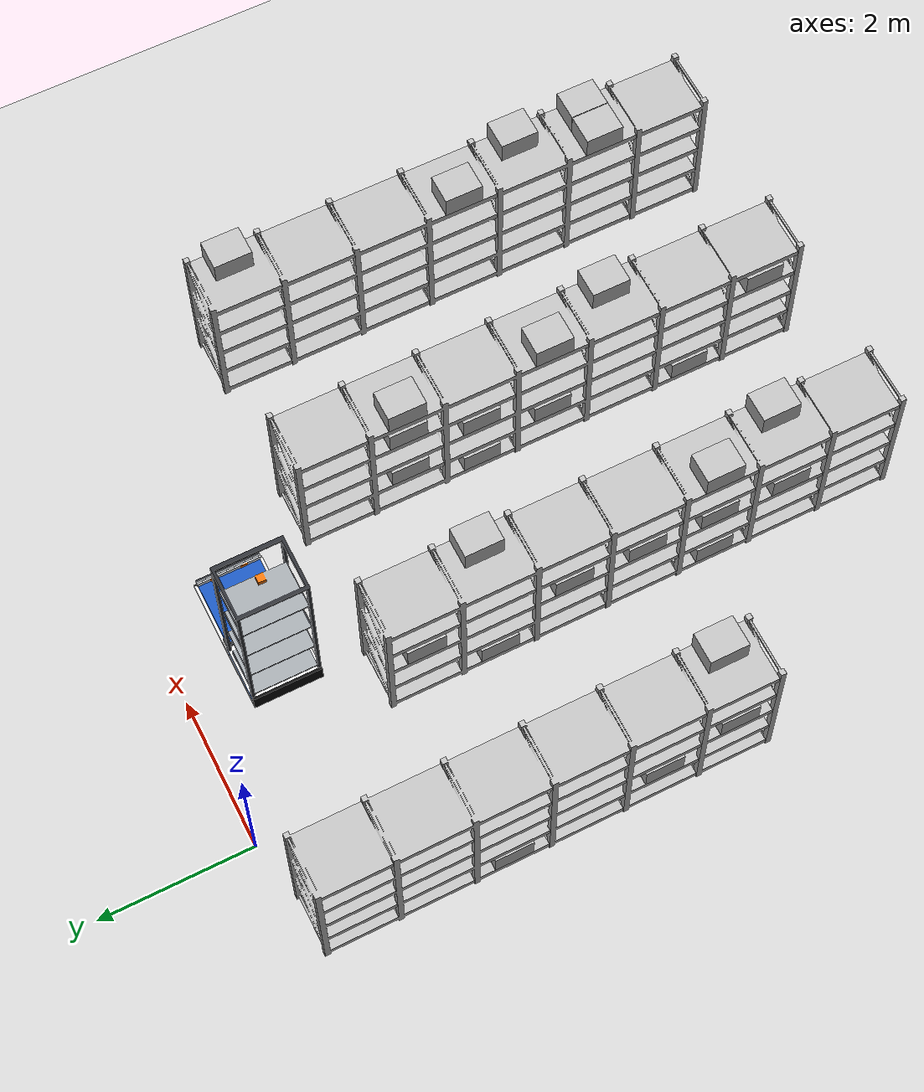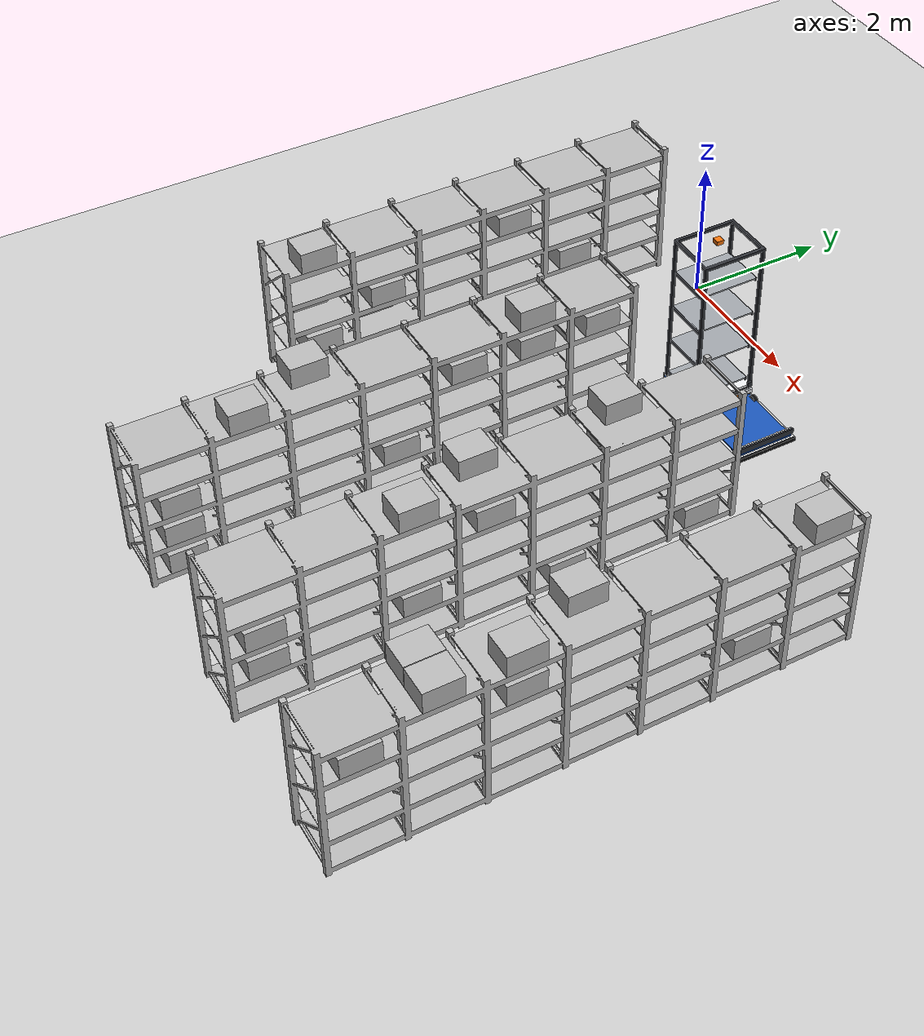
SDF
<sdf version="1.6">
 <world name="default">
  <model name="ground_plane">
   <static>1</static>
   <link name="link">
    <collision name="collision">
     <geometry><plane><normal>0 0 1</normal><size>100 100</size></plane></geometry>
     <surface><friction><ode><mu>100</mu><mu2>50</mu2></ode></friction></surface>
    </collision>
    <visual name="visual">
     <cast_shadows>0</cast_shadows>
     <geometry><plane><normal>0 0 1</normal><size>100 100</size></plane></geometry>
     <material>
      <script><uri>file://media/materials/scripts/gazebo.material</uri><name>Gazebo/Grey</name></script>
     </material>
    </visual>
   </link>
  </model>
  <include>
   <name>rack_A1_0</name>
   <uri>model://warehouse_rack_5lvl_6bay</uri>
   <pose>-1.1401 -3.0477 0 0 0 0</pose>
  </include>
  <model name="box_A_001">
   <pose>-0.93511 -5.4469 0.702 0 0 0</pose>
   <link name="link">
    <inertial>
     <mass>2.0</mass>
     <inertia><ixx>0.05667</ixx><iyy>0.04167</iyy><izz>0.06833</izz><ixy>0</ixy><ixz>0</ixz><iyz>0</iyz></inertia>
    </inertial>
    <collision name="collision">
     <geometry><box><size>0.4 0.5 0.3</size></box></geometry>
     <surface><friction><ode><mu>1.0</mu><mu2>1.0</mu2></ode></friction></surface>
    </collision>
    <visual name="visual">
     <cast_shadows>0</cast_shadows>
     <geometry><box><size>0.4 0.5 0.3</size></box></geometry>
     <material>
      <script>
       <uri>model://labeled_boxes/materials/scripts</uri>
       <uri>model://labeled_boxes/materials/textures</uri>
       <name>LabeledBox/A-001</name>
      </script>
     </material>
    </visual>
   </link>
  </model>
  <model name="box_A_002">
   <pose>-1.3451 -5.4469 1.152 0 0 0</pose>
   <link name="link">
    <inertial>
     <mass>2.0</mass>
     <inertia><ixx>0.05667</ixx><iyy>0.04167</iyy><izz>0.06833</izz><ixy>0</ixy><ixz>0</ixz><iyz>0</iyz></inertia>
    </inertial>
    <collision name="collision">
     <geometry><box><size>0.4 0.5 0.3</size></box></geometry>
     <surface><friction><ode><mu>1.0</mu><mu2>1.0</mu2></ode></friction></surface>
    </collision>
    <visual name="visual">
     <cast_shadows>0</cast_shadows>
     <geometry><box><size>0.4 0.5 0.3</size></box></geometry>
     <material>
      <script>
       <uri>model://labeled_boxes/materials/scripts</uri>
       <uri>model://labeled_boxes/materials/textures</uri>
       <name>LabeledBox/A-002</name>
      </script>
     </material>
    </visual>
   </link>
  </model>
  <model name="box_A_003">
   <pose>-0.93511 -5.4469 2.052 0 0 0</pose>
   <link name="link">
    <inertial>
     <mass>2.0</mass>
     <inertia><ixx>0.05667</ixx><iyy>0.04167</iyy><izz>0.06833</izz><ixy>0</ixy><ixz>0</ixz><iyz>0</iyz></inertia>
    </inertial>
    <collision name="collision">
     <geometry><box><size>0.4 0.5 0.3</size></box></geometry>
     <surface><friction><ode><mu>1.0</mu><mu2>1.0</mu2></ode></friction></surface>
    </collision>
    <visual name="visual">
     <cast_shadows>0</cast_shadows>
     <geometry><box><size>0.4 0.5 0.3</size></box></geometry>
     <material>
      <script>
       <uri>model://labeled_boxes/materials/scripts</uri>
       <uri>model://labeled_boxes/materials/textures</uri>
       <name>LabeledBox/A-003</name>
      </script>
     </material>
    </visual>
   </link>
  </model>
  <model name="box_A_004">
   <pose>-1.3451 -4.4977 0.702 0 0 0</pose>
   <link name="link">
    <inertial>
     <mass>2.0</mass>
     <inertia><ixx>0.05667</ixx><iyy>0.04167</iyy><izz>0.06833</izz><ixy>0</ixy><ixz>0</ixz><iyz>0</iyz></inertia>
    </inertial>
    <collision name="collision">
     <geometry><box><size>0.4 0.5 0.3</size></box></geometry>
     <surface><friction><ode><mu>1.0</mu><mu2>1.0</mu2></ode></friction></surface>
    </collision>
    <visual name="visual">
     <cast_shadows>0</cast_shadows>
     <geometry><box><size>0.4 0.5 0.3</size></box></geometry>
     <material>
      <script>
       <uri>model://labeled_boxes/materials/scripts</uri>
       <uri>model://labeled_boxes/materials/textures</uri>
       <name>LabeledBox/A-004</name>
      </script>
     </material>
    </visual>
   </link>
  </model>
  <model name="box_A_005">
   <pose>-0.93511 -4.4977 1.152 0 0 0</pose>
   <link name="link">
    <inertial>
     <mass>2.0</mass>
     <inertia><ixx>0.05667</ixx><iyy>0.04167</iyy><izz>0.06833</izz><ixy>0</ixy><ixz>0</ixz><iyz>0</iyz></inertia>
    </inertial>
    <collision name="collision">
     <geometry><box><size>0.4 0.5 0.3</size></box></geometry>
     <surface><friction><ode><mu>1.0</mu><mu2>1.0</mu2></ode></friction></surface>
    </collision>
    <visual name="visual">
     <cast_shadows>0</cast_shadows>
     <geometry><box><size>0.4 0.5 0.3</size></box></geometry>
     <material>
      <script>
       <uri>model://labeled_boxes/materials/scripts</uri>
       <uri>model://labeled_boxes/materials/textures</uri>
       <name>LabeledBox/A-005</name>
      </script>
     </material>
    </visual>
   </link>
  </model>
  <model name="box_A_006">
   <pose>-0.93511 -3.531 0.252 0 0 0</pose>
   <link name="link">
    <inertial>
     <mass>2.0</mass>
     <inertia><ixx>0.05667</ixx><iyy>0.04167</iyy><izz>0.06833</izz><ixy>0</ixy><ixz>0</ixz><iyz>0</iyz></inertia>
    </inertial>
    <collision name="collision">
     <geometry><box><size>0.4 0.5 0.3</size></box></geometry>
     <surface><friction><ode><mu>1.0</mu><mu2>1.0</mu2></ode></friction></surface>
    </collision>
    <visual name="visual">
     <cast_shadows>0</cast_shadows>
     <geometry><box><size>0.4 0.5 0.3</size></box></geometry>
     <material>
      <script>
       <uri>model://labeled_boxes/materials/scripts</uri>
       <uri>model://labeled_boxes/materials/textures</uri>
       <name>LabeledBox/A-006</name>
      </script>
     </material>
    </visual>
   </link>
  </model>
  <model name="box_A_007">
   <pose>-1.3451 -2.5644 0.252 0 0 0</pose>
   <link name="link">
    <inertial>
     <mass>2.0</mass>
     <inertia><ixx>0.05667</ixx><iyy>0.04167</iyy><izz>0.06833</izz><ixy>0</ixy><ixz>0</ixz><iyz>0</iyz></inertia>
    </inertial>
    <collision name="collision">
     <geometry><box><size>0.4 0.5 0.3</size></box></geometry>
     <surface><friction><ode><mu>1.0</mu><mu2>1.0</mu2></ode></friction></surface>
    </collision>
    <visual name="visual">
     <cast_shadows>0</cast_shadows>
     <geometry><box><size>0.4 0.5 0.3</size></box></geometry>
     <material>
      <script>
       <uri>model://labeled_boxes/materials/scripts</uri>
       <uri>model://labeled_boxes/materials/textures</uri>
       <name>LabeledBox/A-007</name>
      </script>
     </material>
    </visual>
   </link>
  </model>
  <model name="box_A_008">
   <pose>-0.93511 -2.5644 1.602 0 0 0</pose>
   <link name="link">
    <inertial>
     <mass>2.0</mass>
     <inertia><ixx>0.05667</ixx><iyy>0.04167</iyy><izz>0.06833</izz><ixy>0</ixy><ixz>0</ixz><iyz>0</iyz></inertia>
    </inertial>
    <collision name="collision">
     <geometry><box><size>0.4 0.5 0.3</size></box></geometry>
     <surface><friction><ode><mu>1.0</mu><mu2>1.0</mu2></ode></friction></surface>
    </collision>
    <visual name="visual">
     <cast_shadows>0</cast_shadows>
     <geometry><box><size>0.4 0.5 0.3</size></box></geometry>
     <material>
      <script>
       <uri>model://labeled_boxes/materials/scripts</uri>
       <uri>model://labeled_boxes/materials/textures</uri>
       <name>LabeledBox/A-008</name>
      </script>
     </material>
    </visual>
   </link>
  </model>
  <model name="box_A_009">
   <pose>-0.93511 -1.5977 0.252 0 0 0</pose>
   <link name="link">
    <inertial>
     <mass>2.0</mass>
     <inertia><ixx>0.05667</ixx><iyy>0.04167</iyy><izz>0.06833</izz><ixy>0</ixy><ixz>0</ixz><iyz>0</iyz></inertia>
    </inertial>
    <collision name="collision">
     <geometry><box><size>0.4 0.5 0.3</size></box></geometry>
     <surface><friction><ode><mu>1.0</mu><mu2>1.0</mu2></ode></friction></surface>
    </collision>
    <visual name="visual">
     <cast_shadows>0</cast_shadows>
     <geometry><box><size>0.4 0.5 0.3</size></box></geometry>
     <material>
      <script>
       <uri>model://labeled_boxes/materials/scripts</uri>
       <uri>model://labeled_boxes/materials/textures</uri>
       <name>LabeledBox/A-009</name>
      </script>
     </material>
    </visual>
   </link>
  </model>
  <model name="box_A_010">
   <pose>-0.93511 -1.5977 0.702 0 0 0</pose>
   <link name="link">
    <inertial>
     <mass>2.0</mass>
     <inertia><ixx>0.05667</ixx><iyy>0.04167</iyy><izz>0.06833</izz><ixy>0</ixy><ixz>0</ixz><iyz>0</iyz></inertia>
    </inertial>
    <collision name="collision">
     <geometry><box><size>0.4 0.5 0.3</size></box></geometry>
     <surface><friction><ode><mu>1.0</mu><mu2>1.0</mu2></ode></friction></surface>
    </collision>
    <visual name="visual">
     <cast_shadows>0</cast_shadows>
     <geometry><box><size>0.4 0.5 0.3</size></box></geometry>
     <material>
      <script>
       <uri>model://labeled_boxes/materials/scripts</uri>
       <uri>model://labeled_boxes/materials/textures</uri>
       <name>LabeledBox/A-010</name>
      </script>
     </material>
    </visual>
   </link>
  </model>
  <include>
   <name>rack_A2_0</name>
   <uri>model://warehouse_rack_5lvl_7bay</uri>
   <pose>1.2599 -5.5477 0 0 0 0</pose>
  </include>
  <model name="box_A_013">
   <pose>1.4649 -8.4445 0.252 0 0 0</pose>
   <link name="link">
    <inertial>
     <mass>2.0</mass>
     <inertia><ixx>0.05667</ixx><iyy>0.04167</iyy><izz>0.06833</izz><ixy>0</ixy><ixz>0</ixz><iyz>0</iyz></inertia>
    </inertial>
    <collision name="collision">
     <geometry><box><size>0.4 0.5 0.3</size></box></geometry>
     <surface><friction><ode><mu>1.0</mu><mu2>1.0</mu2></ode></friction></surface>
    </collision>
    <visual name="visual">
     <cast_shadows>0</cast_shadows>
     <geometry><box><size>0.4 0.5 0.3</size></box></geometry>
     <material>
      <script>
       <uri>model://labeled_boxes/materials/scripts</uri>
       <uri>model://labeled_boxes/materials/textures</uri>
       <name>LabeledBox/A-013</name>
      </script>
     </material>
    </visual>
   </link>
  </model>
  <model name="box_A_014">
   <pose>1.4649 -8.4445 0.702 0 0 0</pose>
   <link name="link">
    <inertial>
     <mass>2.0</mass>
     <inertia><ixx>0.05667</ixx><iyy>0.04167</iyy><izz>0.06833</izz><ixy>0</ixy><ixz>0</ixz><iyz>0</iyz></inertia>
    </inertial>
    <collision name="collision">
     <geometry><box><size>0.4 0.5 0.3</size></box></geometry>
     <surface><friction><ode><mu>1.0</mu><mu2>1.0</mu2></ode></friction></surface>
    </collision>
    <visual name="visual">
     <cast_shadows>0</cast_shadows>
     <geometry><box><size>0.4 0.5 0.3</size></box></geometry>
     <material>
      <script>
       <uri>model://labeled_boxes/materials/scripts</uri>
       <uri>model://labeled_boxes/materials/textures</uri>
       <name>LabeledBox/A-014</name>
      </script>
     </material>
    </visual>
   </link>
  </model>
  <model name="box_A_015">
   <pose>1.4649 -8.4445 1.152 0 0 0</pose>
   <link name="link">
    <inertial>
     <mass>2.0</mass>
     <inertia><ixx>0.05667</ixx><iyy>0.04167</iyy><izz>0.06833</izz><ixy>0</ixy><ixz>0</ixz><iyz>0</iyz></inertia>
    </inertial>
    <collision name="collision">
     <geometry><box><size>0.4 0.5 0.3</size></box></geometry>
     <surface><friction><ode><mu>1.0</mu><mu2>1.0</mu2></ode></friction></surface>
    </collision>
    <visual name="visual">
     <cast_shadows>0</cast_shadows>
     <geometry><box><size>0.4 0.5 0.3</size></box></geometry>
     <material>
      <script>
       <uri>model://labeled_boxes/materials/scripts</uri>
       <uri>model://labeled_boxes/materials/textures</uri>
       <name>LabeledBox/A-015</name>
      </script>
     </material>
    </visual>
   </link>
  </model>
  <model name="box_A_016">
   <pose>1.0549 -7.4906 1.152 0 0 0</pose>
   <link name="link">
    <inertial>
     <mass>2.0</mass>
     <inertia><ixx>0.05667</ixx><iyy>0.04167</iyy><izz>0.06833</izz><ixy>0</ixy><ixz>0</ixz><iyz>0</iyz></inertia>
    </inertial>
    <collision name="collision">
     <geometry><box><size>0.4 0.5 0.3</size></box></geometry>
     <surface><friction><ode><mu>1.0</mu><mu2>1.0</mu2></ode></friction></surface>
    </collision>
    <visual name="visual">
     <cast_shadows>0</cast_shadows>
     <geometry><box><size>0.4 0.5 0.3</size></box></geometry>
     <material>
      <script>
       <uri>model://labeled_boxes/materials/scripts</uri>
       <uri>model://labeled_boxes/materials/textures</uri>
       <name>LabeledBox/A-016</name>
      </script>
     </material>
    </visual>
   </link>
  </model>
  <model name="box_A_017">
   <pose>1.4649 -7.4906 2.052 0 0 0</pose>
   <link name="link">
    <inertial>
     <mass>2.0</mass>
     <inertia><ixx>0.05667</ixx><iyy>0.04167</iyy><izz>0.06833</izz><ixy>0</ixy><ixz>0</ixz><iyz>0</iyz></inertia>
    </inertial>
    <collision name="collision">
     <geometry><box><size>0.4 0.5 0.3</size></box></geometry>
     <surface><friction><ode><mu>1.0</mu><mu2>1.0</mu2></ode></friction></surface>
    </collision>
    <visual name="visual">
     <cast_shadows>0</cast_shadows>
     <geometry><box><size>0.4 0.5 0.3</size></box></geometry>
     <material>
      <script>
       <uri>model://labeled_boxes/materials/scripts</uri>
       <uri>model://labeled_boxes/materials/textures</uri>
       <name>LabeledBox/A-017</name>
      </script>
     </material>
    </visual>
   </link>
  </model>
  <model name="box_A_018">
   <pose>1.0549 -6.5191 0.252 0 0 0</pose>
   <link name="link">
    <inertial>
     <mass>2.0</mass>
     <inertia><ixx>0.05667</ixx><iyy>0.04167</iyy><izz>0.06833</izz><ixy>0</ixy><ixz>0</ixz><iyz>0</iyz></inertia>
    </inertial>
    <collision name="collision">
     <geometry><box><size>0.4 0.5 0.3</size></box></geometry>
     <surface><friction><ode><mu>1.0</mu><mu2>1.0</mu2></ode></friction></surface>
    </collision>
    <visual name="visual">
     <cast_shadows>0</cast_shadows>
     <geometry><box><size>0.4 0.5 0.3</size></box></geometry>
     <material>
      <script>
       <uri>model://labeled_boxes/materials/scripts</uri>
       <uri>model://labeled_boxes/materials/textures</uri>
       <name>LabeledBox/A-018</name>
      </script>
     </material>
    </visual>
   </link>
  </model>
  <model name="box_A_019">
   <pose>1.0549 -6.5191 1.152 0 0 0</pose>
   <link name="link">
    <inertial>
     <mass>2.0</mass>
     <inertia><ixx>0.05667</ixx><iyy>0.04167</iyy><izz>0.06833</izz><ixy>0</ixy><ixz>0</ixz><iyz>0</iyz></inertia>
    </inertial>
    <collision name="collision">
     <geometry><box><size>0.4 0.5 0.3</size></box></geometry>
     <surface><friction><ode><mu>1.0</mu><mu2>1.0</mu2></ode></friction></surface>
    </collision>
    <visual name="visual">
     <cast_shadows>0</cast_shadows>
     <geometry><box><size>0.4 0.5 0.3</size></box></geometry>
     <material>
      <script>
       <uri>model://labeled_boxes/materials/scripts</uri>
       <uri>model://labeled_boxes/materials/textures</uri>
       <name>LabeledBox/A-019</name>
      </script>
     </material>
    </visual>
   </link>
  </model>
  <model name="box_A_020">
   <pose>1.0549 -6.5191 2.052 0 0 0</pose>
   <link name="link">
    <inertial>
     <mass>2.0</mass>
     <inertia><ixx>0.05667</ixx><iyy>0.04167</iyy><izz>0.06833</izz><ixy>0</ixy><ixz>0</ixz><iyz>0</iyz></inertia>
    </inertial>
    <collision name="collision">
     <geometry><box><size>0.4 0.5 0.3</size></box></geometry>
     <surface><friction><ode><mu>1.0</mu><mu2>1.0</mu2></ode></friction></surface>
    </collision>
    <visual name="visual">
     <cast_shadows>0</cast_shadows>
     <geometry><box><size>0.4 0.5 0.3</size></box></geometry>
     <material>
      <script>
       <uri>model://labeled_boxes/materials/scripts</uri>
       <uri>model://labeled_boxes/materials/textures</uri>
       <name>LabeledBox/A-020</name>
      </script>
     </material>
    </visual>
   </link>
  </model>
  <model name="box_A_021">
   <pose>1.4649 -5.5477 0.702 0 0 0</pose>
   <link name="link">
    <inertial>
     <mass>2.0</mass>
     <inertia><ixx>0.05667</ixx><iyy>0.04167</iyy><izz>0.06833</izz><ixy>0</ixy><ixz>0</ixz><iyz>0</iyz></inertia>
    </inertial>
    <collision name="collision">
     <geometry><box><size>0.4 0.5 0.3</size></box></geometry>
     <surface><friction><ode><mu>1.0</mu><mu2>1.0</mu2></ode></friction></surface>
    </collision>
    <visual name="visual">
     <cast_shadows>0</cast_shadows>
     <geometry><box><size>0.4 0.5 0.3</size></box></geometry>
     <material>
      <script>
       <uri>model://labeled_boxes/materials/scripts</uri>
       <uri>model://labeled_boxes/materials/textures</uri>
       <name>LabeledBox/A-021</name>
      </script>
     </material>
    </visual>
   </link>
  </model>
  <model name="box_A_022">
   <pose>1.0549 -5.5477 1.152 0 0 0</pose>
   <link name="link">
    <inertial>
     <mass>2.0</mass>
     <inertia><ixx>0.05667</ixx><iyy>0.04167</iyy><izz>0.06833</izz><ixy>0</ixy><ixz>0</ixz><iyz>0</iyz></inertia>
    </inertial>
    <collision name="collision">
     <geometry><box><size>0.4 0.5 0.3</size></box></geometry>
     <surface><friction><ode><mu>1.0</mu><mu2>1.0</mu2></ode></friction></surface>
    </collision>
    <visual name="visual">
     <cast_shadows>0</cast_shadows>
     <geometry><box><size>0.4 0.5 0.3</size></box></geometry>
     <material>
      <script>
       <uri>model://labeled_boxes/materials/scripts</uri>
       <uri>model://labeled_boxes/materials/textures</uri>
       <name>LabeledBox/A-022</name>
      </script>
     </material>
    </visual>
   </link>
  </model>
  <model name="box_A_023">
   <pose>1.4649 -4.5763 0.252 0 0 0</pose>
   <link name="link">
    <inertial>
     <mass>2.0</mass>
     <inertia><ixx>0.05667</ixx><iyy>0.04167</iyy><izz>0.06833</izz><ixy>0</ixy><ixz>0</ixz><iyz>0</iyz></inertia>
    </inertial>
    <collision name="collision">
     <geometry><box><size>0.4 0.5 0.3</size></box></geometry>
     <surface><friction><ode><mu>1.0</mu><mu2>1.0</mu2></ode></friction></surface>
    </collision>
    <visual name="visual">
     <cast_shadows>0</cast_shadows>
     <geometry><box><size>0.4 0.5 0.3</size></box></geometry>
     <material>
      <script>
       <uri>model://labeled_boxes/materials/scripts</uri>
       <uri>model://labeled_boxes/materials/textures</uri>
       <name>LabeledBox/A-023</name>
      </script>
     </material>
    </visual>
   </link>
  </model>
  <model name="box_A_024">
   <pose>1.0549 -4.5763 1.152 0 0 0</pose>
   <link name="link">
    <inertial>
     <mass>2.0</mass>
     <inertia><ixx>0.05667</ixx><iyy>0.04167</iyy><izz>0.06833</izz><ixy>0</ixy><ixz>0</ixz><iyz>0</iyz></inertia>
    </inertial>
    <collision name="collision">
     <geometry><box><size>0.4 0.5 0.3</size></box></geometry>
     <surface><friction><ode><mu>1.0</mu><mu2>1.0</mu2></ode></friction></surface>
    </collision>
    <visual name="visual">
     <cast_shadows>0</cast_shadows>
     <geometry><box><size>0.4 0.5 0.3</size></box></geometry>
     <material>
      <script>
       <uri>model://labeled_boxes/materials/scripts</uri>
       <uri>model://labeled_boxes/materials/textures</uri>
       <name>LabeledBox/A-024</name>
      </script>
     </material>
    </visual>
   </link>
  </model>
  <model name="box_A_025">
   <pose>1.4649 -4.5763 1.602 0 0 0</pose>
   <link name="link">
    <inertial>
     <mass>2.0</mass>
     <inertia><ixx>0.05667</ixx><iyy>0.04167</iyy><izz>0.06833</izz><ixy>0</ixy><ixz>0</ixz><iyz>0</iyz></inertia>
    </inertial>
    <collision name="collision">
     <geometry><box><size>0.4 0.5 0.3</size></box></geometry>
     <surface><friction><ode><mu>1.0</mu><mu2>1.0</mu2></ode></friction></surface>
    </collision>
    <visual name="visual">
     <cast_shadows>0</cast_shadows>
     <geometry><box><size>0.4 0.5 0.3</size></box></geometry>
     <material>
      <script>
       <uri>model://labeled_boxes/materials/scripts</uri>
       <uri>model://labeled_boxes/materials/textures</uri>
       <name>LabeledBox/A-025</name>
      </script>
     </material>
    </visual>
   </link>
  </model>
  <model name="box_A_026">
   <pose>1.0549 -3.6049 0.252 0 0 0</pose>
   <link name="link">
    <inertial>
     <mass>2.0</mass>
     <inertia><ixx>0.05667</ixx><iyy>0.04167</iyy><izz>0.06833</izz><ixy>0</ixy><ixz>0</ixz><iyz>0</iyz></inertia>
    </inertial>
    <collision name="collision">
     <geometry><box><size>0.4 0.5 0.3</size></box></geometry>
     <surface><friction><ode><mu>1.0</mu><mu2>1.0</mu2></ode></friction></surface>
    </collision>
    <visual name="visual">
     <cast_shadows>0</cast_shadows>
     <geometry><box><size>0.4 0.5 0.3</size></box></geometry>
     <material>
      <script>
       <uri>model://labeled_boxes/materials/scripts</uri>
       <uri>model://labeled_boxes/materials/textures</uri>
       <name>LabeledBox/A-026</name>
      </script>
     </material>
    </visual>
   </link>
  </model>
  <model name="box_A_027">
   <pose>1.4649 -3.6049 1.602 0 0 0</pose>
   <link name="link">
    <inertial>
     <mass>2.0</mass>
     <inertia><ixx>0.05667</ixx><iyy>0.04167</iyy><izz>0.06833</izz><ixy>0</ixy><ixz>0</ixz><iyz>0</iyz></inertia>
    </inertial>
    <collision name="collision">
     <geometry><box><size>0.4 0.5 0.3</size></box></geometry>
     <surface><friction><ode><mu>1.0</mu><mu2>1.0</mu2></ode></friction></surface>
    </collision>
    <visual name="visual">
     <cast_shadows>0</cast_shadows>
     <geometry><box><size>0.4 0.5 0.3</size></box></geometry>
     <material>
      <script>
       <uri>model://labeled_boxes/materials/scripts</uri>
       <uri>model://labeled_boxes/materials/textures</uri>
       <name>LabeledBox/A-027</name>
      </script>
     </material>
    </visual>
   </link>
  </model>
  <model name="box_A_028">
   <pose>1.4649 -3.6049 2.052 0 0 0</pose>
   <link name="link">
    <inertial>
     <mass>2.0</mass>
     <inertia><ixx>0.05667</ixx><iyy>0.04167</iyy><izz>0.06833</izz><ixy>0</ixy><ixz>0</ixz><iyz>0</iyz></inertia>
    </inertial>
    <collision name="collision">
     <geometry><box><size>0.4 0.5 0.3</size></box></geometry>
     <surface><friction><ode><mu>1.0</mu><mu2>1.0</mu2></ode></friction></surface>
    </collision>
    <visual name="visual">
     <cast_shadows>0</cast_shadows>
     <geometry><box><size>0.4 0.5 0.3</size></box></geometry>
     <material>
      <script>
       <uri>model://labeled_boxes/materials/scripts</uri>
       <uri>model://labeled_boxes/materials/textures</uri>
       <name>LabeledBox/A-028</name>
      </script>
     </material>
    </visual>
   </link>
  </model>
  <model name="box_A_029">
   <pose>1.0549 -2.6509 1.152 0 0 0</pose>
   <link name="link">
    <inertial>
     <mass>2.0</mass>
     <inertia><ixx>0.05667</ixx><iyy>0.04167</iyy><izz>0.06833</izz><ixy>0</ixy><ixz>0</ixz><iyz>0</iyz></inertia>
    </inertial>
    <collision name="collision">
     <geometry><box><size>0.4 0.5 0.3</size></box></geometry>
     <surface><friction><ode><mu>1.0</mu><mu2>1.0</mu2></ode></friction></surface>
    </collision>
    <visual name="visual">
     <cast_shadows>0</cast_shadows>
     <geometry><box><size>0.4 0.5 0.3</size></box></geometry>
     <material>
      <script>
       <uri>model://labeled_boxes/materials/scripts</uri>
       <uri>model://labeled_boxes/materials/textures</uri>
       <name>LabeledBox/A-029</name>
      </script>
     </material>
    </visual>
   </link>
  </model>
  <model name="box_A_030">
   <pose>1.4649 -2.6509 1.602 0 0 0</pose>
   <link name="link">
    <inertial>
     <mass>2.0</mass>
     <inertia><ixx>0.05667</ixx><iyy>0.04167</iyy><izz>0.06833</izz><ixy>0</ixy><ixz>0</ixz><iyz>0</iyz></inertia>
    </inertial>
    <collision name="collision">
     <geometry><box><size>0.4 0.5 0.3</size></box></geometry>
     <surface><friction><ode><mu>1.0</mu><mu2>1.0</mu2></ode></friction></surface>
    </collision>
    <visual name="visual">
     <cast_shadows>0</cast_shadows>
     <geometry><box><size>0.4 0.5 0.3</size></box></geometry>
     <material>
      <script>
       <uri>model://labeled_boxes/materials/scripts</uri>
       <uri>model://labeled_boxes/materials/textures</uri>
       <name>LabeledBox/A-030</name>
      </script>
     </material>
    </visual>
   </link>
  </model>
  <include>
   <name>rack_A3_0</name>
   <uri>model://warehouse_rack_5lvl_7bay</uri>
   <pose>3.6599 -5.5477 0 0 0 0</pose>
  </include>
  <model name="box_A_048">
   <pose>3.8649 -8.4445 0.702 0 0 0</pose>
   <link name="link">
    <inertial>
     <mass>2.0</mass>
     <inertia><ixx>0.05667</ixx><iyy>0.04167</iyy><izz>0.06833</izz><ixy>0</ixy><ixz>0</ixz><iyz>0</iyz></inertia>
    </inertial>
    <collision name="collision">
     <geometry><box><size>0.4 0.5 0.3</size></box></geometry>
     <surface><friction><ode><mu>1.0</mu><mu2>1.0</mu2></ode></friction></surface>
    </collision>
    <visual name="visual">
     <cast_shadows>0</cast_shadows>
     <geometry><box><size>0.4 0.5 0.3</size></box></geometry>
     <material>
      <script>
       <uri>model://labeled_boxes/materials/scripts</uri>
       <uri>model://labeled_boxes/materials/textures</uri>
       <name>LabeledBox/A-048</name>
      </script>
     </material>
    </visual>
   </link>
  </model>
  <model name="box_A_049">
   <pose>3.8649 -8.4445 1.152 0 0 0</pose>
   <link name="link">
    <inertial>
     <mass>2.0</mass>
     <inertia><ixx>0.05667</ixx><iyy>0.04167</iyy><izz>0.06833</izz><ixy>0</ixy><ixz>0</ixz><iyz>0</iyz></inertia>
    </inertial>
    <collision name="collision">
     <geometry><box><size>0.4 0.5 0.3</size></box></geometry>
     <surface><friction><ode><mu>1.0</mu><mu2>1.0</mu2></ode></friction></surface>
    </collision>
    <visual name="visual">
     <cast_shadows>0</cast_shadows>
     <geometry><box><size>0.4 0.5 0.3</size></box></geometry>
     <material>
      <script>
       <uri>model://labeled_boxes/materials/scripts</uri>
       <uri>model://labeled_boxes/materials/textures</uri>
       <name>LabeledBox/A-049</name>
      </script>
     </material>
    </visual>
   </link>
  </model>
  <model name="box_A_050">
   <pose>3.4549 -8.4445 1.602 0 0 0</pose>
   <link name="link">
    <inertial>
     <mass>2.0</mass>
     <inertia><ixx>0.05667</ixx><iyy>0.04167</iyy><izz>0.06833</izz><ixy>0</ixy><ixz>0</ixz><iyz>0</iyz></inertia>
    </inertial>
    <collision name="collision">
     <geometry><box><size>0.4 0.5 0.3</size></box></geometry>
     <surface><friction><ode><mu>1.0</mu><mu2>1.0</mu2></ode></friction></surface>
    </collision>
    <visual name="visual">
     <cast_shadows>0</cast_shadows>
     <geometry><box><size>0.4 0.5 0.3</size></box></geometry>
     <material>
      <script>
       <uri>model://labeled_boxes/materials/scripts</uri>
       <uri>model://labeled_boxes/materials/textures</uri>
       <name>LabeledBox/A-050</name>
      </script>
     </material>
    </visual>
   </link>
  </model>
  <model name="box_A_051">
   <pose>3.4549 -7.4906 0.252 0 0 0</pose>
   <link name="link">
    <inertial>
     <mass>2.0</mass>
     <inertia><ixx>0.05667</ixx><iyy>0.04167</iyy><izz>0.06833</izz><ixy>0</ixy><ixz>0</ixz><iyz>0</iyz></inertia>
    </inertial>
    <collision name="collision">
     <geometry><box><size>0.4 0.5 0.3</size></box></geometry>
     <surface><friction><ode><mu>1.0</mu><mu2>1.0</mu2></ode></friction></surface>
    </collision>
    <visual name="visual">
     <cast_shadows>0</cast_shadows>
     <geometry><box><size>0.4 0.5 0.3</size></box></geometry>
     <material>
      <script>
       <uri>model://labeled_boxes/materials/scripts</uri>
       <uri>model://labeled_boxes/materials/textures</uri>
       <name>LabeledBox/A-051</name>
      </script>
     </material>
    </visual>
   </link>
  </model>
  <model name="box_A_052">
   <pose>3.8649 -6.5191 0.702 0 0 0</pose>
   <link name="link">
    <inertial>
     <mass>2.0</mass>
     <inertia><ixx>0.05667</ixx><iyy>0.04167</iyy><izz>0.06833</izz><ixy>0</ixy><ixz>0</ixz><iyz>0</iyz></inertia>
    </inertial>
    <collision name="collision">
     <geometry><box><size>0.4 0.5 0.3</size></box></geometry>
     <surface><friction><ode><mu>1.0</mu><mu2>1.0</mu2></ode></friction></surface>
    </collision>
    <visual name="visual">
     <cast_shadows>0</cast_shadows>
     <geometry><box><size>0.4 0.5 0.3</size></box></geometry>
     <material>
      <script>
       <uri>model://labeled_boxes/materials/scripts</uri>
       <uri>model://labeled_boxes/materials/textures</uri>
       <name>LabeledBox/A-052</name>
      </script>
     </material>
    </visual>
   </link>
  </model>
  <model name="box_A_053">
   <pose>3.8649 -6.5191 2.052 0 0 0</pose>
   <link name="link">
    <inertial>
     <mass>2.0</mass>
     <inertia><ixx>0.05667</ixx><iyy>0.04167</iyy><izz>0.06833</izz><ixy>0</ixy><ixz>0</ixz><iyz>0</iyz></inertia>
    </inertial>
    <collision name="collision">
     <geometry><box><size>0.4 0.5 0.3</size></box></geometry>
     <surface><friction><ode><mu>1.0</mu><mu2>1.0</mu2></ode></friction></surface>
    </collision>
    <visual name="visual">
     <cast_shadows>0</cast_shadows>
     <geometry><box><size>0.4 0.5 0.3</size></box></geometry>
     <material>
      <script>
       <uri>model://labeled_boxes/materials/scripts</uri>
       <uri>model://labeled_boxes/materials/textures</uri>
       <name>LabeledBox/A-053</name>
      </script>
     </material>
    </visual>
   </link>
  </model>
  <model name="box_A_054">
   <pose>3.4549 -5.5477 0.702 0 0 0</pose>
   <link name="link">
    <inertial>
     <mass>2.0</mass>
     <inertia><ixx>0.05667</ixx><iyy>0.04167</iyy><izz>0.06833</izz><ixy>0</ixy><ixz>0</ixz><iyz>0</iyz></inertia>
    </inertial>
    <collision name="collision">
     <geometry><box><size>0.4 0.5 0.3</size></box></geometry>
     <surface><friction><ode><mu>1.0</mu><mu2>1.0</mu2></ode></friction></surface>
    </collision>
    <visual name="visual">
     <cast_shadows>0</cast_shadows>
     <geometry><box><size>0.4 0.5 0.3</size></box></geometry>
     <material>
      <script>
       <uri>model://labeled_boxes/materials/scripts</uri>
       <uri>model://labeled_boxes/materials/textures</uri>
       <name>LabeledBox/A-054</name>
      </script>
     </material>
    </visual>
   </link>
  </model>
  <model name="box_A_055">
   <pose>3.8649 -5.5477 1.602 0 0 0</pose>
   <link name="link">
    <inertial>
     <mass>2.0</mass>
     <inertia><ixx>0.05667</ixx><iyy>0.04167</iyy><izz>0.06833</izz><ixy>0</ixy><ixz>0</ixz><iyz>0</iyz></inertia>
    </inertial>
    <collision name="collision">
     <geometry><box><size>0.4 0.5 0.3</size></box></geometry>
     <surface><friction><ode><mu>1.0</mu><mu2>1.0</mu2></ode></friction></surface>
    </collision>
    <visual name="visual">
     <cast_shadows>0</cast_shadows>
     <geometry><box><size>0.4 0.5 0.3</size></box></geometry>
     <material>
      <script>
       <uri>model://labeled_boxes/materials/scripts</uri>
       <uri>model://labeled_boxes/materials/textures</uri>
       <name>LabeledBox/A-055</name>
      </script>
     </material>
    </visual>
   </link>
  </model>
  <model name="box_A_056">
   <pose>3.4549 -5.5477 2.052 0 0 0</pose>
   <link name="link">
    <inertial>
     <mass>2.0</mass>
     <inertia><ixx>0.05667</ixx><iyy>0.04167</iyy><izz>0.06833</izz><ixy>0</ixy><ixz>0</ixz><iyz>0</iyz></inertia>
    </inertial>
    <collision name="collision">
     <geometry><box><size>0.4 0.5 0.3</size></box></geometry>
     <surface><friction><ode><mu>1.0</mu><mu2>1.0</mu2></ode></friction></surface>
    </collision>
    <visual name="visual">
     <cast_shadows>0</cast_shadows>
     <geometry><box><size>0.4 0.5 0.3</size></box></geometry>
     <material>
      <script>
       <uri>model://labeled_boxes/materials/scripts</uri>
       <uri>model://labeled_boxes/materials/textures</uri>
       <name>LabeledBox/A-056</name>
      </script>
     </material>
    </visual>
   </link>
  </model>
  <model name="box_A_057">
   <pose>3.4549 -4.5763 0.252 0 0 0</pose>
   <link name="link">
    <inertial>
     <mass>2.0</mass>
     <inertia><ixx>0.05667</ixx><iyy>0.04167</iyy><izz>0.06833</izz><ixy>0</ixy><ixz>0</ixz><iyz>0</iyz></inertia>
    </inertial>
    <collision name="collision">
     <geometry><box><size>0.4 0.5 0.3</size></box></geometry>
     <surface><friction><ode><mu>1.0</mu><mu2>1.0</mu2></ode></friction></surface>
    </collision>
    <visual name="visual">
     <cast_shadows>0</cast_shadows>
     <geometry><box><size>0.4 0.5 0.3</size></box></geometry>
     <material>
      <script>
       <uri>model://labeled_boxes/materials/scripts</uri>
       <uri>model://labeled_boxes/materials/textures</uri>
       <name>LabeledBox/A-057</name>
      </script>
     </material>
    </visual>
   </link>
  </model>
  <model name="box_A_058">
   <pose>3.8649 -4.5763 0.252 0 0 0</pose>
   <link name="link">
    <inertial>
     <mass>2.0</mass>
     <inertia><ixx>0.05667</ixx><iyy>0.04167</iyy><izz>0.06833</izz><ixy>0</ixy><ixz>0</ixz><iyz>0</iyz></inertia>
    </inertial>
    <collision name="collision">
     <geometry><box><size>0.4 0.5 0.3</size></box></geometry>
     <surface><friction><ode><mu>1.0</mu><mu2>1.0</mu2></ode></friction></surface>
    </collision>
    <visual name="visual">
     <cast_shadows>0</cast_shadows>
     <geometry><box><size>0.4 0.5 0.3</size></box></geometry>
     <material>
      <script>
       <uri>model://labeled_boxes/materials/scripts</uri>
       <uri>model://labeled_boxes/materials/textures</uri>
       <name>LabeledBox/A-058</name>
      </script>
     </material>
    </visual>
   </link>
  </model>
  <model name="box_A_059">
   <pose>3.4549 -4.5763 1.152 0 0 0</pose>
   <link name="link">
    <inertial>
     <mass>2.0</mass>
     <inertia><ixx>0.05667</ixx><iyy>0.04167</iyy><izz>0.06833</izz><ixy>0</ixy><ixz>0</ixz><iyz>0</iyz></inertia>
    </inertial>
    <collision name="collision">
     <geometry><box><size>0.4 0.5 0.3</size></box></geometry>
     <surface><friction><ode><mu>1.0</mu><mu2>1.0</mu2></ode></friction></surface>
    </collision>
    <visual name="visual">
     <cast_shadows>0</cast_shadows>
     <geometry><box><size>0.4 0.5 0.3</size></box></geometry>
     <material>
      <script>
       <uri>model://labeled_boxes/materials/scripts</uri>
       <uri>model://labeled_boxes/materials/textures</uri>
       <name>LabeledBox/A-059</name>
      </script>
     </material>
    </visual>
   </link>
  </model>
  <model name="box_A_060">
   <pose>3.4549 -3.6049 0.702 0 0 0</pose>
   <link name="link">
    <inertial>
     <mass>2.0</mass>
     <inertia><ixx>0.05667</ixx><iyy>0.04167</iyy><izz>0.06833</izz><ixy>0</ixy><ixz>0</ixz><iyz>0</iyz></inertia>
    </inertial>
    <collision name="collision">
     <geometry><box><size>0.4 0.5 0.3</size></box></geometry>
     <surface><friction><ode><mu>1.0</mu><mu2>1.0</mu2></ode></friction></surface>
    </collision>
    <visual name="visual">
     <cast_shadows>0</cast_shadows>
     <geometry><box><size>0.4 0.5 0.3</size></box></geometry>
     <material>
      <script>
       <uri>model://labeled_boxes/materials/scripts</uri>
       <uri>model://labeled_boxes/materials/textures</uri>
       <name>LabeledBox/A-060</name>
      </script>
     </material>
    </visual>
   </link>
  </model>
  <model name="box_A_061">
   <pose>3.4549 -3.6049 1.602 0 0 0</pose>
   <link name="link">
    <inertial>
     <mass>2.0</mass>
     <inertia><ixx>0.05667</ixx><iyy>0.04167</iyy><izz>0.06833</izz><ixy>0</ixy><ixz>0</ixz><iyz>0</iyz></inertia>
    </inertial>
    <collision name="collision">
     <geometry><box><size>0.4 0.5 0.3</size></box></geometry>
     <surface><friction><ode><mu>1.0</mu><mu2>1.0</mu2></ode></friction></surface>
    </collision>
    <visual name="visual">
     <cast_shadows>0</cast_shadows>
     <geometry><box><size>0.4 0.5 0.3</size></box></geometry>
     <material>
      <script>
       <uri>model://labeled_boxes/materials/scripts</uri>
       <uri>model://labeled_boxes/materials/textures</uri>
       <name>LabeledBox/A-061</name>
      </script>
     </material>
    </visual>
   </link>
  </model>
  <model name="box_A_062">
   <pose>3.4549 -3.6049 2.052 0 0 0</pose>
   <link name="link">
    <inertial>
     <mass>2.0</mass>
     <inertia><ixx>0.05667</ixx><iyy>0.04167</iyy><izz>0.06833</izz><ixy>0</ixy><ixz>0</ixz><iyz>0</iyz></inertia>
    </inertial>
    <collision name="collision">
     <geometry><box><size>0.4 0.5 0.3</size></box></geometry>
     <surface><friction><ode><mu>1.0</mu><mu2>1.0</mu2></ode></friction></surface>
    </collision>
    <visual name="visual">
     <cast_shadows>0</cast_shadows>
     <geometry><box><size>0.4 0.5 0.3</size></box></geometry>
     <material>
      <script>
       <uri>model://labeled_boxes/materials/scripts</uri>
       <uri>model://labeled_boxes/materials/textures</uri>
       <name>LabeledBox/A-062</name>
      </script>
     </material>
    </visual>
   </link>
  </model>
  <model name="box_A_063">
   <pose>3.8649 -2.6509 0.252 0 0 0</pose>
   <link name="link">
    <inertial>
     <mass>2.0</mass>
     <inertia><ixx>0.05667</ixx><iyy>0.04167</iyy><izz>0.06833</izz><ixy>0</ixy><ixz>0</ixz><iyz>0</iyz></inertia>
    </inertial>
    <collision name="collision">
     <geometry><box><size>0.4 0.5 0.3</size></box></geometry>
     <surface><friction><ode><mu>1.0</mu><mu2>1.0</mu2></ode></friction></surface>
    </collision>
    <visual name="visual">
     <cast_shadows>0</cast_shadows>
     <geometry><box><size>0.4 0.5 0.3</size></box></geometry>
     <material>
      <script>
       <uri>model://labeled_boxes/materials/scripts</uri>
       <uri>model://labeled_boxes/materials/textures</uri>
       <name>LabeledBox/A-063</name>
      </script>
     </material>
    </visual>
   </link>
  </model>
  <include>
   <name>rack_A4_0</name>
   <uri>model://warehouse_rack_5lvl_7bay</uri>
   <pose>6.0599 -5.5477 0 0 0 0</pose>
  </include>
  <model name="box_A_081">
   <pose>6.2649 -8.4445 1.602 0 0 0</pose>
   <link name="link">
    <inertial>
     <mass>2.0</mass>
     <inertia><ixx>0.05667</ixx><iyy>0.04167</iyy><izz>0.06833</izz><ixy>0</ixy><ixz>0</ixz><iyz>0</iyz></inertia>
    </inertial>
    <collision name="collision">
     <geometry><box><size>0.4 0.5 0.3</size></box></geometry>
     <surface><friction><ode><mu>1.0</mu><mu2>1.0</mu2></ode></friction></surface>
    </collision>
    <visual name="visual">
     <cast_shadows>0</cast_shadows>
     <geometry><box><size>0.4 0.5 0.3</size></box></geometry>
     <material>
      <script>
       <uri>model://labeled_boxes/materials/scripts</uri>
       <uri>model://labeled_boxes/materials/textures</uri>
       <name>LabeledBox/A-081</name>
      </script>
     </material>
    </visual>
   </link>
  </model>
  <model name="box_A_082">
   <pose>5.8549 -7.4906 2.052 0 0 0</pose>
   <link name="link">
    <inertial>
     <mass>2.0</mass>
     <inertia><ixx>0.05667</ixx><iyy>0.04167</iyy><izz>0.06833</izz><ixy>0</ixy><ixz>0</ixz><iyz>0</iyz></inertia>
    </inertial>
    <collision name="collision">
     <geometry><box><size>0.4 0.5 0.3</size></box></geometry>
     <surface><friction><ode><mu>1.0</mu><mu2>1.0</mu2></ode></friction></surface>
    </collision>
    <visual name="visual">
     <cast_shadows>0</cast_shadows>
     <geometry><box><size>0.4 0.5 0.3</size></box></geometry>
     <material>
      <script>
       <uri>model://labeled_boxes/materials/scripts</uri>
       <uri>model://labeled_boxes/materials/textures</uri>
       <name>LabeledBox/A-082</name>
      </script>
     </material>
    </visual>
   </link>
  </model>
  <model name="box_A_083">
   <pose>6.2649 -7.4906 2.052 0 0 0</pose>
   <link name="link">
    <inertial>
     <mass>2.0</mass>
     <inertia><ixx>0.05667</ixx><iyy>0.04167</iyy><izz>0.06833</izz><ixy>0</ixy><ixz>0</ixz><iyz>0</iyz></inertia>
    </inertial>
    <collision name="collision">
     <geometry><box><size>0.4 0.5 0.3</size></box></geometry>
     <surface><friction><ode><mu>1.0</mu><mu2>1.0</mu2></ode></friction></surface>
    </collision>
    <visual name="visual">
     <cast_shadows>0</cast_shadows>
     <geometry><box><size>0.4 0.5 0.3</size></box></geometry>
     <material>
      <script>
       <uri>model://labeled_boxes/materials/scripts</uri>
       <uri>model://labeled_boxes/materials/textures</uri>
       <name>LabeledBox/A-083</name>
      </script>
     </material>
    </visual>
   </link>
  </model>
  <model name="box_A_084">
   <pose>6.2649 -6.5191 1.602 0 0 0</pose>
   <link name="link">
    <inertial>
     <mass>2.0</mass>
     <inertia><ixx>0.05667</ixx><iyy>0.04167</iyy><izz>0.06833</izz><ixy>0</ixy><ixz>0</ixz><iyz>0</iyz></inertia>
    </inertial>
    <collision name="collision">
     <geometry><box><size>0.4 0.5 0.3</size></box></geometry>
     <surface><friction><ode><mu>1.0</mu><mu2>1.0</mu2></ode></friction></surface>
    </collision>
    <visual name="visual">
     <cast_shadows>0</cast_shadows>
     <geometry><box><size>0.4 0.5 0.3</size></box></geometry>
     <material>
      <script>
       <uri>model://labeled_boxes/materials/scripts</uri>
       <uri>model://labeled_boxes/materials/textures</uri>
       <name>LabeledBox/A-084</name>
      </script>
     </material>
    </visual>
   </link>
  </model>
  <model name="box_A_085">
   <pose>6.2649 -6.5191 2.052 0 0 0</pose>
   <link name="link">
    <inertial>
     <mass>2.0</mass>
     <inertia><ixx>0.05667</ixx><iyy>0.04167</iyy><izz>0.06833</izz><ixy>0</ixy><ixz>0</ixz><iyz>0</iyz></inertia>
    </inertial>
    <collision name="collision">
     <geometry><box><size>0.4 0.5 0.3</size></box></geometry>
     <surface><friction><ode><mu>1.0</mu><mu2>1.0</mu2></ode></friction></surface>
    </collision>
    <visual name="visual">
     <cast_shadows>0</cast_shadows>
     <geometry><box><size>0.4 0.5 0.3</size></box></geometry>
     <material>
      <script>
       <uri>model://labeled_boxes/materials/scripts</uri>
       <uri>model://labeled_boxes/materials/textures</uri>
       <name>LabeledBox/A-085</name>
      </script>
     </material>
    </visual>
   </link>
  </model>
  <model name="box_A_086">
   <pose>5.8549 -5.5477 2.052 0 0 0</pose>
   <link name="link">
    <inertial>
     <mass>2.0</mass>
     <inertia><ixx>0.05667</ixx><iyy>0.04167</iyy><izz>0.06833</izz><ixy>0</ixy><ixz>0</ixz><iyz>0</iyz></inertia>
    </inertial>
    <collision name="collision">
     <geometry><box><size>0.4 0.5 0.3</size></box></geometry>
     <surface><friction><ode><mu>1.0</mu><mu2>1.0</mu2></ode></friction></surface>
    </collision>
    <visual name="visual">
     <cast_shadows>0</cast_shadows>
     <geometry><box><size>0.4 0.5 0.3</size></box></geometry>
     <material>
      <script>
       <uri>model://labeled_boxes/materials/scripts</uri>
       <uri>model://labeled_boxes/materials/textures</uri>
       <name>LabeledBox/A-086</name>
      </script>
     </material>
    </visual>
   </link>
  </model>
  <model name="box_A_087">
   <pose>6.2649 -3.6049 0.702 0 0 0</pose>
   <link name="link">
    <inertial>
     <mass>2.0</mass>
     <inertia><ixx>0.05667</ixx><iyy>0.04167</iyy><izz>0.06833</izz><ixy>0</ixy><ixz>0</ixz><iyz>0</iyz></inertia>
    </inertial>
    <collision name="collision">
     <geometry><box><size>0.4 0.5 0.3</size></box></geometry>
     <surface><friction><ode><mu>1.0</mu><mu2>1.0</mu2></ode></friction></surface>
    </collision>
    <visual name="visual">
     <cast_shadows>0</cast_shadows>
     <geometry><box><size>0.4 0.5 0.3</size></box></geometry>
     <material>
      <script>
       <uri>model://labeled_boxes/materials/scripts</uri>
       <uri>model://labeled_boxes/materials/textures</uri>
       <name>LabeledBox/A-087</name>
      </script>
     </material>
    </visual>
   </link>
  </model>
  <model name="box_A_088">
   <pose>6.2649 -2.6509 2.052 0 0 0</pose>
   <link name="link">
    <inertial>
     <mass>2.0</mass>
     <inertia><ixx>0.05667</ixx><iyy>0.04167</iyy><izz>0.06833</izz><ixy>0</ixy><ixz>0</ixz><iyz>0</iyz></inertia>
    </inertial>
    <collision name="collision">
     <geometry><box><size>0.4 0.5 0.3</size></box></geometry>
     <surface><friction><ode><mu>1.0</mu><mu2>1.0</mu2></ode></friction></surface>
    </collision>
    <visual name="visual">
     <cast_shadows>0</cast_shadows>
     <geometry><box><size>0.4 0.5 0.3</size></box></geometry>
     <material>
      <script>
       <uri>model://labeled_boxes/materials/scripts</uri>
       <uri>model://labeled_boxes/materials/textures</uri>
       <name>LabeledBox/A-088</name>
      </script>
     </material>
    </visual>
   </link>
  </model>
  <model name="picker_1">
   <pose>2.4599 -1.1477 0.005 0 0 0</pose>
   <link name="base_link">
    <inertial>
     <mass>250</mass>
     <inertia><ixx>20.21</ixx><iyy>69.34</iyy><izz>82.88</izz><ixy>0</ixy><ixz>0</ixz><iyz>0</iyz></inertia>
    </inertial>
    <collision name="chassis_front">
     <pose>0.365 0 0.0375 0 0 0</pose>
     <geometry><box><size>1.05 0.9 0.075</size></box></geometry>
     <surface><friction><ode><mu>0</mu><mu2>0</mu2></ode></friction></surface>
    </collision>
    <collision name="chassis_rear">
     <pose>-0.525 0 0.125 0 0 0</pose>
     <geometry><box><size>0.73 0.9 0.25</size></box></geometry>
     <surface><friction><ode><mu>0</mu><mu2>0</mu2></ode></friction></surface>
    </collision>
    <collision name="mast_-1">
     <pose>-0.16 -0.43 1.35 0 0 0</pose>
     <geometry><box><size>0.05 0.04 2.2</size></box></geometry>
     <surface><friction><ode><mu>0</mu><mu2>0</mu2></ode></friction></surface>
    </collision>
    <collision name="mast_1">
     <pose>-0.16 0.43 1.35 0 0 0</pose>
     <geometry><box><size>0.05 0.04 2.2</size></box></geometry>
     <surface><friction><ode><mu>0</mu><mu2>0</mu2></ode></friction></surface>
    </collision>
    <sensor name="laser" type="gpu_ray">
     <pose>0.9 0 0.05 0 0 0</pose>
     <update_rate>10</update_rate>
     <ray>
      <scan>
       <horizontal>
        <samples>540</samples>
        <resolution>1</resolution>
        <min_angle>-2.356</min_angle>
        <max_angle>2.356</max_angle>
       </horizontal>
      </scan>
      <range><min>0.1</min><max>20</max><resolution>0.01</resolution></range>
      <noise><type>gaussian</type><mean>0</mean><stddev>0.01</stddev></noise>
     </ray>
     <plugin name="laser" filename="libgazebo_ros_ray_sensor.so">
      <ros><namespace>/picker_1</namespace><remapping>~/out:=scan</remapping></ros>
      <output_type>sensor_msgs/LaserScan</output_type>
      <frame_name>picker_1/laser</frame_name>
     </plugin>
    </sensor>
    <visual name="visual">
     <cast_shadows>false</cast_shadows>
     <geometry><mesh><uri>model://picker_robot/meshes/base.dae</uri></mesh></geometry>
    </visual>
   </link>
   <link name="carriage">
    <pose>0.37 0 0.1 0 0 0</pose>
    <inertial>
     <mass>15</mass>
     <inertia><ixx>0.853</ixx><iyy>1.117</iyy><izz>1.945</izz><ixy>0</ixy><ixz>0</ixz><iyz>0</iyz></inertia>
    </inertial>
    <visual name="visual">
     <cast_shadows>false</cast_shadows>
     <geometry><mesh><uri>model://picker_robot/meshes/carriage.dae</uri></mesh></geometry>
    </visual>
   </link>
   <link name="stage">
    <pose>0.37 0 0.1 0 0 0</pose>
    <inertial>
     <mass>2</mass>
     <inertia><ixx>0.1184</ixx><iyy>0.1481</iyy><izz>0.2649</izz><ixy>0</ixy><ixz>0</ixz><iyz>0</iyz></inertia>
    </inertial>
    <visual name="visual">
     <cast_shadows>false</cast_shadows>
     <geometry><mesh><uri>model://picker_robot/meshes/stage.dae</uri></mesh></geometry>
    </visual>
   </link>
   <link name="arm">
    <pose>0.37 0 0.1 0 0 0</pose>
    <inertial>
     <mass>2</mass>
     <inertia><ixx>0.1182</ixx><iyy>0.1356</iyy><izz>0.2526</izz><ixy>0</ixy><ixz>0</ixz><iyz>0</iyz></inertia>
    </inertial>
    <visual name="visual">
     <cast_shadows>false</cast_shadows>
     <geometry><mesh><uri>model://picker_robot/meshes/arm.dae</uri></mesh></geometry>
    </visual>
   </link>
   <joint name="lift_joint" type="prismatic">
    <parent>base_link</parent>
    <child>carriage</child>
    <axis>
     <xyz>0 0 1</xyz>
     <limit><lower>0</lower><upper>1.9</upper><effort>5000</effort><velocity>1</velocity></limit>
    </axis>
   </joint>
   <joint name="reach_joint" type="prismatic">
    <parent>carriage</parent>
    <child>stage</child>
    <axis>
     <xyz>0 1 0</xyz>
     <limit><lower>-0.75</lower><upper>0.75</upper><effort>5000</effort><velocity>1</velocity></limit>
    </axis>
   </joint>
   <joint name="reach2_joint" type="prismatic">
    <parent>stage</parent>
    <child>arm</child>
    <axis>
     <xyz>0 1 0</xyz>
     <limit><lower>-0.75</lower><upper>0.75</upper><effort>5000</effort><velocity>1</velocity></limit>
    </axis>
   </joint>
   <plugin name="custom_robot" filename="/workspace/models/picker_robot/plugins/libcustom_robot.so">
    <ros><namespace>/picker_1</namespace></ros>
    <role>picker</role>
    <max_speed>1.2</max_speed>
    <max_turn_rate>1.2</max_turn_rate>
    <acceleration>0.8</acceleration>
    <tray_x>0.37</tray_x>
    <tray_zero>0.1</tray_zero>
    <reach_max>1.5</reach_max>
    <slot_x>-0.53</slot_x>
    <slot_heights>0.3 0.85 1.4 1.95</slot_heights>
    <aisle_half>0.78</aisle_half>
    <laser_pose>0.9 0 0.05 0 0 0</laser_pose>
   </plugin>
  </model>
 </world>
</sdf>
